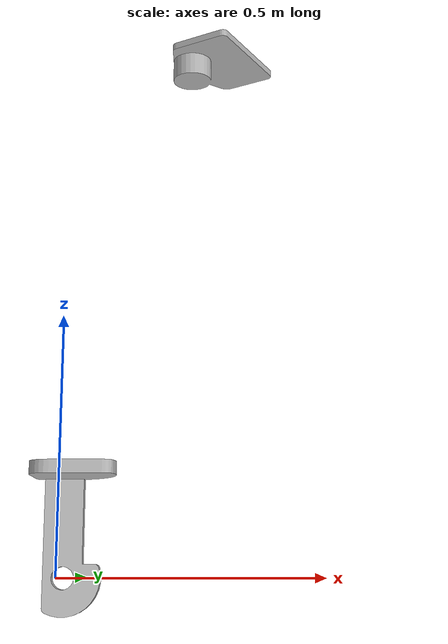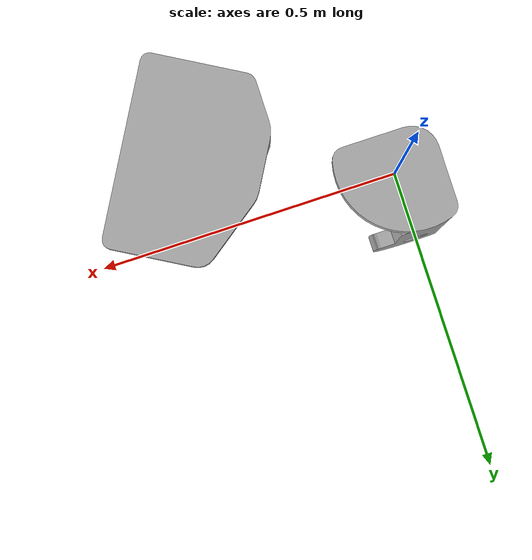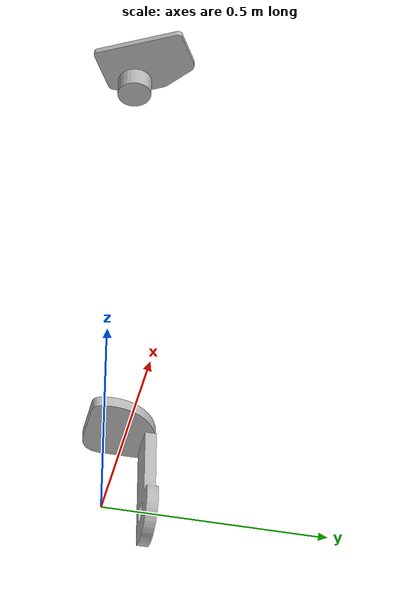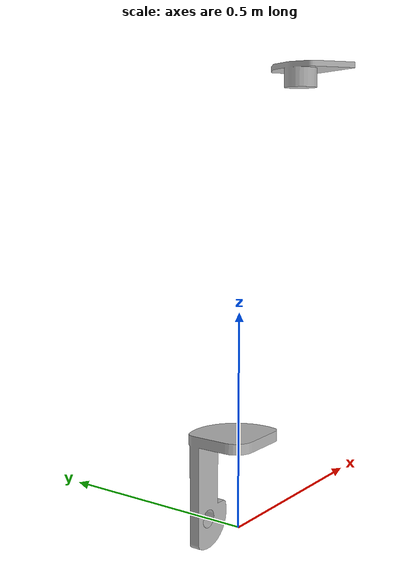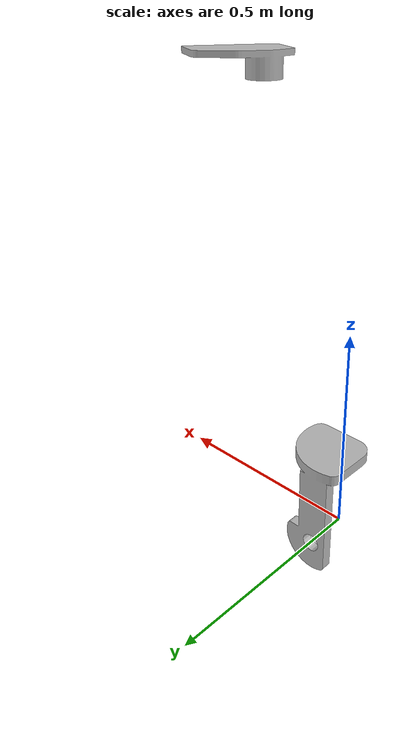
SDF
<sdf version='1.6'>
  <model name='master'>
  <static> false </static>
    <link name='right_top_panel'>
      <pose frame=''>0.25 0 1 0 0 0</pose>
      <inertial>
        <pose frame=''>0 0 0 0 -0 0</pose>
        <mass>0.9</mass>
        <inertia>
          <ixx>0.01</ixx>
          <ixy>0</ixy>
          <ixz>0</ixz>
          <iyy>0.01</iyy>
          <iyz>0</iyz>
          <izz>0.01</izz>
        </inertia>
      </inertial>
      <collision name='right_top_panel_collision'>
        <pose frame=''>0 0 0 0 -0 0</pose>
        <geometry>
          <mesh>
            <scale>1 1 1</scale>
            <uri>model://MTM/meshes/right_top_panel.STL</uri>
          </mesh>
        </geometry>
      </collision>
      <visual name='right_top_panel_visual'>
        <pose frame=''>0 0 0 0 -0 0</pose>
        <geometry>
          <mesh>
            <scale>1 1 1</scale>
            <uri>model://MTM/meshes/right_top_panel.STL</uri>
          </mesh>
        </geometry>
      </visual>
    </link>

    <joint name='right_fixed_joint' type='fixed'>
      <child>right_top_panel</child>
      <parent>world</parent>
    </joint>

    <link name='right_outer_yaw_link'>
      <pose frame=''>0 0 0 0 0 0</pose>
      <inertial>
        <pose frame=''>0 0 0 0 -0 0</pose>
        <mass>2</mass>
        <inertia>
          <ixx>0.01</ixx>
          <ixy>0</ixy>
          <ixz>0</ixz>
          <iyy>0.01</iyy>
          <iyz>0</iyz>
          <izz>0.01</izz>
        </inertia>
      </inertial>
      <collision name='right_outer_yaw_link_collision'>
        <pose frame=''>0 0 0 0 -0 0</pose>
        <geometry>
          <mesh>
            <scale>1 1 1</scale>
            <uri>model://MTM/meshes/right_outer_yaw_link.STL</uri>
          </mesh>
        </geometry>
      </collision>
      <visual name='right_outer_yaw_link_visual'>
        <pose frame=''>0 0 0 0 -0 0</pose>
        <geometry>
          <mesh>
            <scale>1 1 1</scale>
            <uri>model://MTM/meshes/right_outer_yaw_link.STL</uri>
          </mesh>
        </geometry>
      </visual>
    </link>
    <joint name='right_outer_yaw_joint' type='revolute'>
      <child>right_outer_yaw_link</child>
      <parent>right_top_panel</parent>
      <axis>
        <xyz>0 0 1</xyz>
        <limit>
          <lower>-0.6981</lower>
          <upper>1.1345</upper>
          <effort>500</effort>
          <velocity>5</velocity>
        </limit>
        <dynamics>
          <spring_reference>0</spring_reference>
          <spring_stiffness>0</spring_stiffness>
        </dynamics>
        <use_parent_model_frame>1</use_parent_model_frame>
      </axis>
    </joint>

  </model>
</sdf>
